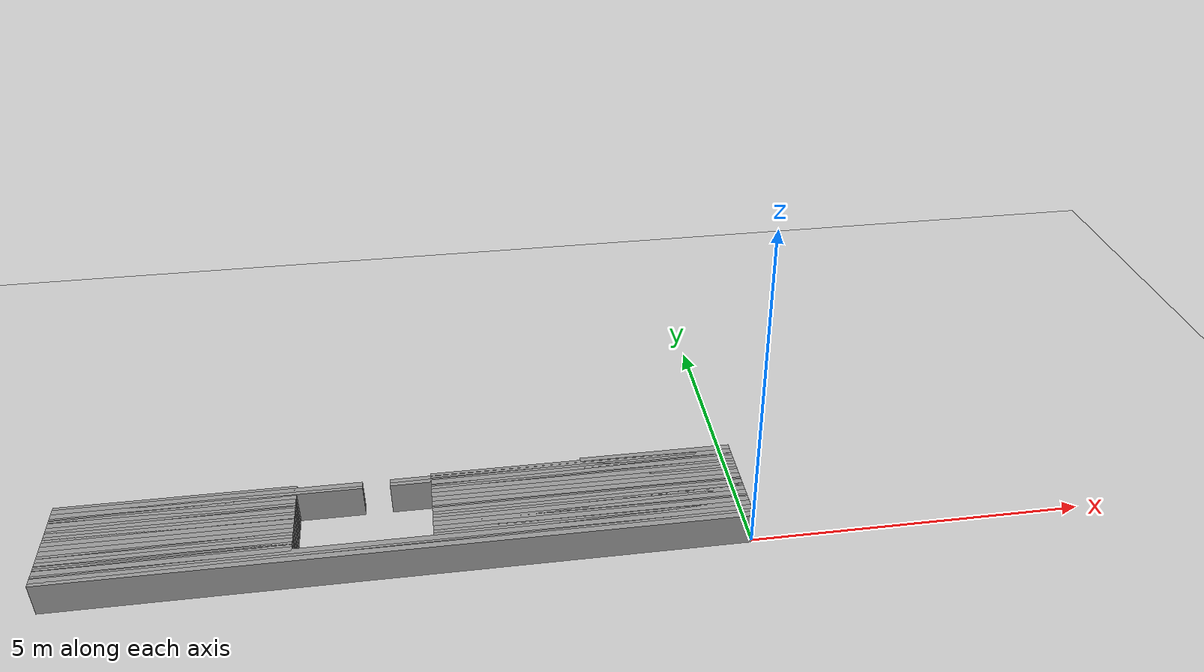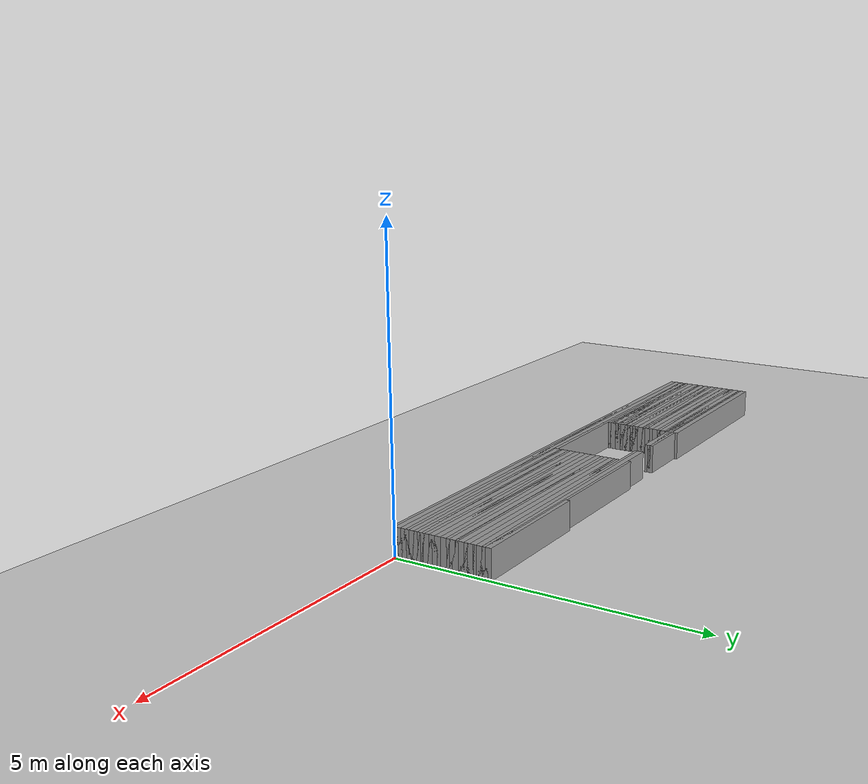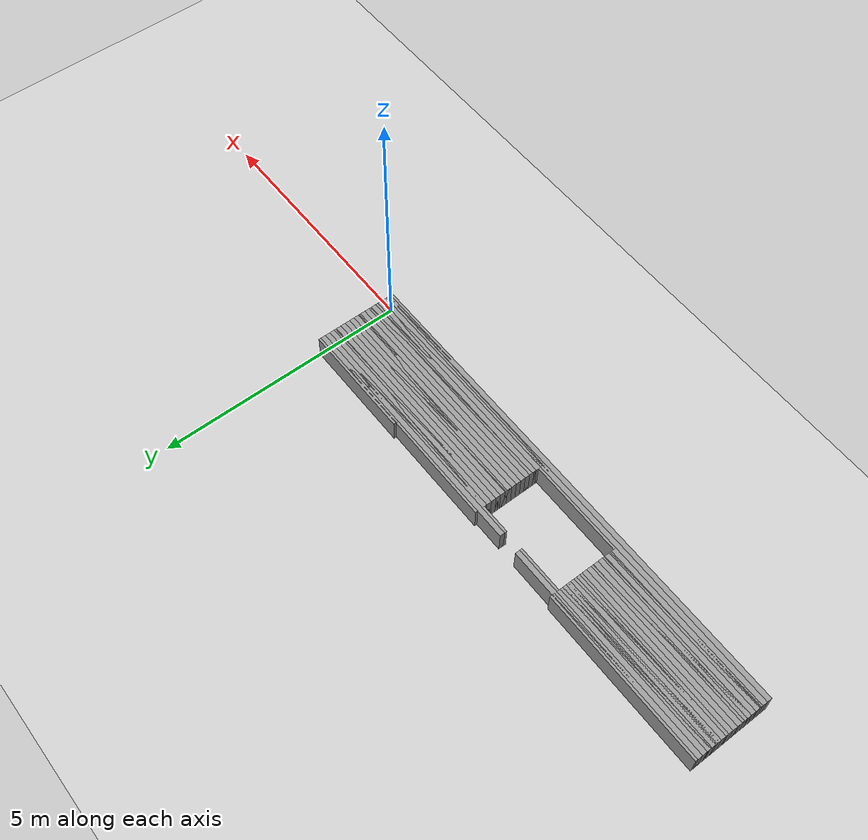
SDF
<sdf version="1.6">
 <world name="GridMap">
  <include><uri>model://sun</uri></include>
  <include><uri>model://ground_plane</uri></include>
  <model name="GridMap">
   <link name="Wall_(99.5,0.0)">
    <collision name="Wall_(99.5,0.0)_Collision">
     <geometry><box><size>9.950000000000001 0.1 0.5</size></box></geometry>
     <pose>-4.9750000000000005 0.0 0.25 0 -0 0</pose>
    </collision>
    <inertial>
     <mass>0.5</mass>
     <pose>0 0.01 0 0 0 0</pose>
     <inertia><ixx>0.004</ixx><ixy>0.001</ixy><ixz>0</ixz><iyy>0.006</iyy><iyz>0</iyz><izz>0.007</izz></inertia>
    </inertial>
    <visual name="Wall_(99.5,0.0)_Visual">
     <geometry><box><size>9.950000000000001 0.1 0.5</size></box></geometry>
     <pose>-4.9750000000000005 0.0 0.25 0 -0 0</pose>
     <material>
      <script><uri>file://media/materials/scripts/gazebo.material</uri><name>Gazebo/Grey</name></script>
      <ambient>1 1 1 1</ambient>
     </material>
     <meta><layer>0</layer></meta>
    </visual>
   </link>
   <link name="Wall_(99.5,1.0)">
    <collision name="Wall_(99.5,1.0)_Collision">
     <geometry><box><size>9.950000000000001 0.1 0.5</size></box></geometry>
     <pose>-4.9750000000000005 0.05 0.25 0 -0 0</pose>
    </collision>
    <inertial>
     <mass>0.5</mass>
     <pose>0 0.01 0 0 0 0</pose>
     <inertia><ixx>0.004</ixx><ixy>0.001</ixy><ixz>0</ixz><iyy>0.006</iyy><iyz>0</iyz><izz>0.007</izz></inertia>
    </inertial>
    <visual name="Wall_(99.5,1.0)_Visual">
     <geometry><box><size>9.950000000000001 0.1 0.5</size></box></geometry>
     <pose>-4.9750000000000005 0.05 0.25 0 -0 0</pose>
     <material>
      <script><uri>file://media/materials/scripts/gazebo.material</uri><name>Gazebo/Grey</name></script>
      <ambient>1 1 1 1</ambient>
     </material>
     <meta><layer>0</layer></meta>
    </visual>
   </link>
   <link name="Wall_(99.5,2.0)">
    <collision name="Wall_(99.5,2.0)_Collision">
     <geometry><box><size>9.950000000000001 0.1 0.5</size></box></geometry>
     <pose>-4.9750000000000005 0.1 0.25 0 -0 0</pose>
    </collision>
    <inertial>
     <mass>0.5</mass>
     <pose>0 0.01 0 0 0 0</pose>
     <inertia><ixx>0.004</ixx><ixy>0.001</ixy><ixz>0</ixz><iyy>0.006</iyy><iyz>0</iyz><izz>0.007</izz></inertia>
    </inertial>
    <visual name="Wall_(99.5,2.0)_Visual">
     <geometry><box><size>9.950000000000001 0.1 0.5</size></box></geometry>
     <pose>-4.9750000000000005 0.1 0.25 0 -0 0</pose>
     <material>
      <script><uri>file://media/materials/scripts/gazebo.material</uri><name>Gazebo/Grey</name></script>
      <ambient>1 1 1 1</ambient>
     </material>
     <meta><layer>0</layer></meta>
    </visual>
   </link>
   <link name="Wall_(99.5,3.0)">
    <collision name="Wall_(99.5,3.0)_Collision">
     <geometry><box><size>9.950000000000001 0.1 0.5</size></box></geometry>
     <pose>-4.9750000000000005 0.15000000000000002 0.25 0 -0 0</pose>
    </collision>
    <inertial>
     <mass>0.5</mass>
     <pose>0 0.01 0 0 0 0</pose>
     <inertia><ixx>0.004</ixx><ixy>0.001</ixy><ixz>0</ixz><iyy>0.006</iyy><iyz>0</iyz><izz>0.007</izz></inertia>
    </inertial>
    <visual name="Wall_(99.5,3.0)_Visual">
     <geometry><box><size>9.950000000000001 0.1 0.5</size></box></geometry>
     <pose>-4.9750000000000005 0.15000000000000002 0.25 0 -0 0</pose>
     <material>
      <script><uri>file://media/materials/scripts/gazebo.material</uri><name>Gazebo/Grey</name></script>
      <ambient>1 1 1 1</ambient>
     </material>
     <meta><layer>0</layer></meta>
    </visual>
   </link>
   <link name="Wall_(45.5,4.0)">
    <collision name="Wall_(45.5,4.0)_Collision">
     <geometry><box><size>4.55 0.1 0.5</size></box></geometry>
     <pose>-2.275 0.2 0.25 0 -0 0</pose>
    </collision>
    <inertial>
     <mass>0.5</mass>
     <pose>0 0.01 0 0 0 0</pose>
     <inertia><ixx>0.004</ixx><ixy>0.001</ixy><ixz>0</ixz><iyy>0.006</iyy><iyz>0</iyz><izz>0.007</izz></inertia>
    </inertial>
    <visual name="Wall_(45.5,4.0)_Visual">
     <geometry><box><size>4.55 0.1 0.5</size></box></geometry>
     <pose>-2.275 0.2 0.25 0 -0 0</pose>
     <material>
      <script><uri>file://media/materials/scripts/gazebo.material</uri><name>Gazebo/Grey</name></script>
      <ambient>1 1 1 1</ambient>
     </material>
     <meta><layer>0</layer></meta>
    </visual>
   </link>
   <link name="Wall_(164.5,4.0)">
    <collision name="Wall_(164.5,4.0)_Collision">
     <geometry><box><size>3.45 0.1 0.5</size></box></geometry>
     <pose>-8.225 0.2 0.25 0 -0 0</pose>
    </collision>
    <inertial>
     <mass>0.5</mass>
     <pose>0 0.01 0 0 0 0</pose>
     <inertia><ixx>0.004</ixx><ixy>0.001</ixy><ixz>0</ixz><iyy>0.006</iyy><iyz>0</iyz><izz>0.007</izz></inertia>
    </inertial>
    <visual name="Wall_(164.5,4.0)_Visual">
     <geometry><box><size>3.45 0.1 0.5</size></box></geometry>
     <pose>-8.225 0.2 0.25 0 -0 0</pose>
     <material>
      <script><uri>file://media/materials/scripts/gazebo.material</uri><name>Gazebo/Grey</name></script>
      <ambient>1 1 1 1</ambient>
     </material>
     <meta><layer>0</layer></meta>
    </visual>
   </link>
   <link name="Wall_(45.5,5.0)">
    <collision name="Wall_(45.5,5.0)_Collision">
     <geometry><box><size>4.55 0.1 0.5</size></box></geometry>
     <pose>-2.275 0.25 0.25 0 -0 0</pose>
    </collision>
    <inertial>
     <mass>0.5</mass>
     <pose>0 0.01 0 0 0 0</pose>
     <inertia><ixx>0.004</ixx><ixy>0.001</ixy><ixz>0</ixz><iyy>0.006</iyy><iyz>0</iyz><izz>0.007</izz></inertia>
    </inertial>
    <visual name="Wall_(45.5,5.0)_Visual">
     <geometry><box><size>4.55 0.1 0.5</size></box></geometry>
     <pose>-2.275 0.25 0.25 0 -0 0</pose>
     <material>
      <script><uri>file://media/materials/scripts/gazebo.material</uri><name>Gazebo/Grey</name></script>
      <ambient>1 1 1 1</ambient>
     </material>
     <meta><layer>0</layer></meta>
    </visual>
   </link>
   <link name="Wall_(164.5,5.0)">
    <collision name="Wall_(164.5,5.0)_Collision">
     <geometry><box><size>3.45 0.1 0.5</size></box></geometry>
     <pose>-8.225 0.25 0.25 0 -0 0</pose>
    </collision>
    <inertial>
     <mass>0.5</mass>
     <pose>0 0.01 0 0 0 0</pose>
     <inertia><ixx>0.004</ixx><ixy>0.001</ixy><ixz>0</ixz><iyy>0.006</iyy><iyz>0</iyz><izz>0.007</izz></inertia>
    </inertial>
    <visual name="Wall_(164.5,5.0)_Visual">
     <geometry><box><size>3.45 0.1 0.5</size></box></geometry>
     <pose>-8.225 0.25 0.25 0 -0 0</pose>
     <material>
      <script><uri>file://media/materials/scripts/gazebo.material</uri><name>Gazebo/Grey</name></script>
      <ambient>1 1 1 1</ambient>
     </material>
     <meta><layer>0</layer></meta>
    </visual>
   </link>
   <link name="Wall_(45.5,6.0)">
    <collision name="Wall_(45.5,6.0)_Collision">
     <geometry><box><size>4.55 0.1 0.5</size></box></geometry>
     <pose>-2.275 0.30000000000000004 0.25 0 -0 0</pose>
    </collision>
    <inertial>
     <mass>0.5</mass>
     <pose>0 0.01 0 0 0 0</pose>
     <inertia><ixx>0.004</ixx><ixy>0.001</ixy><ixz>0</ixz><iyy>0.006</iyy><iyz>0</iyz><izz>0.007</izz></inertia>
    </inertial>
    <visual name="Wall_(45.5,6.0)_Visual">
     <geometry><box><size>4.55 0.1 0.5</size></box></geometry>
     <pose>-2.275 0.30000000000000004 0.25 0 -0 0</pose>
     <material>
      <script><uri>file://media/materials/scripts/gazebo.material</uri><name>Gazebo/Grey</name></script>
      <ambient>1 1 1 1</ambient>
     </material>
     <meta><layer>0</layer></meta>
    </visual>
   </link>
   <link name="Wall_(164.5,6.0)">
    <collision name="Wall_(164.5,6.0)_Collision">
     <geometry><box><size>3.45 0.1 0.5</size></box></geometry>
     <pose>-8.225 0.30000000000000004 0.25 0 -0 0</pose>
    </collision>
    <inertial>
     <mass>0.5</mass>
     <pose>0 0.01 0 0 0 0</pose>
     <inertia><ixx>0.004</ixx><ixy>0.001</ixy><ixz>0</ixz><iyy>0.006</iyy><iyz>0</iyz><izz>0.007</izz></inertia>
    </inertial>
    <visual name="Wall_(164.5,6.0)_Visual">
     <geometry><box><size>3.45 0.1 0.5</size></box></geometry>
     <pose>-8.225 0.30000000000000004 0.25 0 -0 0</pose>
     <material>
      <script><uri>file://media/materials/scripts/gazebo.material</uri><name>Gazebo/Grey</name></script>
      <ambient>1 1 1 1</ambient>
     </material>
     <meta><layer>0</layer></meta>
    </visual>
   </link>
   <link name="Wall_(45.5,7.0)">
    <collision name="Wall_(45.5,7.0)_Collision">
     <geometry><box><size>4.55 0.1 0.5</size></box></geometry>
     <pose>-2.275 0.35000000000000003 0.25 0 -0 0</pose>
    </collision>
    <inertial>
     <mass>0.5</mass>
     <pose>0 0.01 0 0 0 0</pose>
     <inertia><ixx>0.004</ixx><ixy>0.001</ixy><ixz>0</ixz><iyy>0.006</iyy><iyz>0</iyz><izz>0.007</izz></inertia>
    </inertial>
    <visual name="Wall_(45.5,7.0)_Visual">
     <geometry><box><size>4.55 0.1 0.5</size></box></geometry>
     <pose>-2.275 0.35000000000000003 0.25 0 -0 0</pose>
     <material>
      <script><uri>file://media/materials/scripts/gazebo.material</uri><name>Gazebo/Grey</name></script>
      <ambient>1 1 1 1</ambient>
     </material>
     <meta><layer>0</layer></meta>
    </visual>
   </link>
   <link name="Wall_(164.5,7.0)">
    <collision name="Wall_(164.5,7.0)_Collision">
     <geometry><box><size>3.45 0.1 0.5</size></box></geometry>
     <pose>-8.225 0.35000000000000003 0.25 0 -0 0</pose>
    </collision>
    <inertial>
     <mass>0.5</mass>
     <pose>0 0.01 0 0 0 0</pose>
     <inertia><ixx>0.004</ixx><ixy>0.001</ixy><ixz>0</ixz><iyy>0.006</iyy><iyz>0</iyz><izz>0.007</izz></inertia>
    </inertial>
    <visual name="Wall_(164.5,7.0)_Visual">
     <geometry><box><size>3.45 0.1 0.5</size></box></geometry>
     <pose>-8.225 0.35000000000000003 0.25 0 -0 0</pose>
     <material>
      <script><uri>file://media/materials/scripts/gazebo.material</uri><name>Gazebo/Grey</name></script>
      <ambient>1 1 1 1</ambient>
     </material>
     <meta><layer>0</layer></meta>
    </visual>
   </link>
   <link name="Wall_(45.5,8.0)">
    <collision name="Wall_(45.5,8.0)_Collision">
     <geometry><box><size>4.55 0.1 0.5</size></box></geometry>
     <pose>-2.275 0.4 0.25 0 -0 0</pose>
    </collision>
    <inertial>
     <mass>0.5</mass>
     <pose>0 0.01 0 0 0 0</pose>
     <inertia><ixx>0.004</ixx><ixy>0.001</ixy><ixz>0</ixz><iyy>0.006</iyy><iyz>0</iyz><izz>0.007</izz></inertia>
    </inertial>
    <visual name="Wall_(45.5,8.0)_Visual">
     <geometry><box><size>4.55 0.1 0.5</size></box></geometry>
     <pose>-2.275 0.4 0.25 0 -0 0</pose>
     <material>
      <script><uri>file://media/materials/scripts/gazebo.material</uri><name>Gazebo/Grey</name></script>
      <ambient>1 1 1 1</ambient>
     </material>
     <meta><layer>0</layer></meta>
    </visual>
   </link>
   <link name="Wall_(164.5,8.0)">
    <collision name="Wall_(164.5,8.0)_Collision">
     <geometry><box><size>3.45 0.1 0.5</size></box></geometry>
     <pose>-8.225 0.4 0.25 0 -0 0</pose>
    </collision>
    <inertial>
     <mass>0.5</mass>
     <pose>0 0.01 0 0 0 0</pose>
     <inertia><ixx>0.004</ixx><ixy>0.001</ixy><ixz>0</ixz><iyy>0.006</iyy><iyz>0</iyz><izz>0.007</izz></inertia>
    </inertial>
    <visual name="Wall_(164.5,8.0)_Visual">
     <geometry><box><size>3.45 0.1 0.5</size></box></geometry>
     <pose>-8.225 0.4 0.25 0 -0 0</pose>
     <material>
      <script><uri>file://media/materials/scripts/gazebo.material</uri><name>Gazebo/Grey</name></script>
      <ambient>1 1 1 1</ambient>
     </material>
     <meta><layer>0</layer></meta>
    </visual>
   </link>
   <link name="Wall_(45.5,9.0)">
    <collision name="Wall_(45.5,9.0)_Collision">
     <geometry><box><size>4.55 0.1 0.5</size></box></geometry>
     <pose>-2.275 0.45 0.25 0 -0 0</pose>
    </collision>
    <inertial>
     <mass>0.5</mass>
     <pose>0 0.01 0 0 0 0</pose>
     <inertia><ixx>0.004</ixx><ixy>0.001</ixy><ixz>0</ixz><iyy>0.006</iyy><iyz>0</iyz><izz>0.007</izz></inertia>
    </inertial>
    <visual name="Wall_(45.5,9.0)_Visual">
     <geometry><box><size>4.55 0.1 0.5</size></box></geometry>
     <pose>-2.275 0.45 0.25 0 -0 0</pose>
     <material>
      <script><uri>file://media/materials/scripts/gazebo.material</uri><name>Gazebo/Grey</name></script>
      <ambient>1 1 1 1</ambient>
     </material>
     <meta><layer>0</layer></meta>
    </visual>
   </link>
   <link name="Wall_(164.5,9.0)">
    <collision name="Wall_(164.5,9.0)_Collision">
     <geometry><box><size>3.45 0.1 0.5</size></box></geometry>
     <pose>-8.225 0.45 0.25 0 -0 0</pose>
    </collision>
    <inertial>
     <mass>0.5</mass>
     <pose>0 0.01 0 0 0 0</pose>
     <inertia><ixx>0.004</ixx><ixy>0.001</ixy><ixz>0</ixz><iyy>0.006</iyy><iyz>0</iyz><izz>0.007</izz></inertia>
    </inertial>
    <visual name="Wall_(164.5,9.0)_Visual">
     <geometry><box><size>3.45 0.1 0.5</size></box></geometry>
     <pose>-8.225 0.45 0.25 0 -0 0</pose>
     <material>
      <script><uri>file://media/materials/scripts/gazebo.material</uri><name>Gazebo/Grey</name></script>
      <ambient>1 1 1 1</ambient>
     </material>
     <meta><layer>0</layer></meta>
    </visual>
   </link>
   <link name="Wall_(45.5,10.0)">
    <collision name="Wall_(45.5,10.0)_Collision">
     <geometry><box><size>4.55 0.1 0.5</size></box></geometry>
     <pose>-2.275 0.5 0.25 0 -0 0</pose>
    </collision>
    <inertial>
     <mass>0.5</mass>
     <pose>0 0.01 0 0 0 0</pose>
     <inertia><ixx>0.004</ixx><ixy>0.001</ixy><ixz>0</ixz><iyy>0.006</iyy><iyz>0</iyz><izz>0.007</izz></inertia>
    </inertial>
    <visual name="Wall_(45.5,10.0)_Visual">
     <geometry><box><size>4.55 0.1 0.5</size></box></geometry>
     <pose>-2.275 0.5 0.25 0 -0 0</pose>
     <material>
      <script><uri>file://media/materials/scripts/gazebo.material</uri><name>Gazebo/Grey</name></script>
      <ambient>1 1 1 1</ambient>
     </material>
     <meta><layer>0</layer></meta>
    </visual>
   </link>
   <link name="Wall_(164.5,10.0)">
    <collision name="Wall_(164.5,10.0)_Collision">
     <geometry><box><size>3.45 0.1 0.5</size></box></geometry>
     <pose>-8.225 0.5 0.25 0 -0 0</pose>
    </collision>
    <inertial>
     <mass>0.5</mass>
     <pose>0 0.01 0 0 0 0</pose>
     <inertia><ixx>0.004</ixx><ixy>0.001</ixy><ixz>0</ixz><iyy>0.006</iyy><iyz>0</iyz><izz>0.007</izz></inertia>
    </inertial>
    <visual name="Wall_(164.5,10.0)_Visual">
     <geometry><box><size>3.45 0.1 0.5</size></box></geometry>
     <pose>-8.225 0.5 0.25 0 -0 0</pose>
     <material>
      <script><uri>file://media/materials/scripts/gazebo.material</uri><name>Gazebo/Grey</name></script>
      <ambient>1 1 1 1</ambient>
     </material>
     <meta><layer>0</layer></meta>
    </visual>
   </link>
   <link name="Wall_(45.5,11.0)">
    <collision name="Wall_(45.5,11.0)_Collision">
     <geometry><box><size>4.55 0.1 0.5</size></box></geometry>
     <pose>-2.275 0.55 0.25 0 -0 0</pose>
    </collision>
    <inertial>
     <mass>0.5</mass>
     <pose>0 0.01 0 0 0 0</pose>
     <inertia><ixx>0.004</ixx><ixy>0.001</ixy><ixz>0</ixz><iyy>0.006</iyy><iyz>0</iyz><izz>0.007</izz></inertia>
    </inertial>
    <visual name="Wall_(45.5,11.0)_Visual">
     <geometry><box><size>4.55 0.1 0.5</size></box></geometry>
     <pose>-2.275 0.55 0.25 0 -0 0</pose>
     <material>
      <script><uri>file://media/materials/scripts/gazebo.material</uri><name>Gazebo/Grey</name></script>
      <ambient>1 1 1 1</ambient>
     </material>
     <meta><layer>0</layer></meta>
    </visual>
   </link>
   <link name="Wall_(164.5,11.0)">
    <collision name="Wall_(164.5,11.0)_Collision">
     <geometry><box><size>3.45 0.1 0.5</size></box></geometry>
     <pose>-8.225 0.55 0.25 0 -0 0</pose>
    </collision>
    <inertial>
     <mass>0.5</mass>
     <pose>0 0.01 0 0 0 0</pose>
     <inertia><ixx>0.004</ixx><ixy>0.001</ixy><ixz>0</ixz><iyy>0.006</iyy><iyz>0</iyz><izz>0.007</izz></inertia>
    </inertial>
    <visual name="Wall_(164.5,11.0)_Visual">
     <geometry><box><size>3.45 0.1 0.5</size></box></geometry>
     <pose>-8.225 0.55 0.25 0 -0 0</pose>
     <material>
      <script><uri>file://media/materials/scripts/gazebo.material</uri><name>Gazebo/Grey</name></script>
      <ambient>1 1 1 1</ambient>
     </material>
     <meta><layer>0</layer></meta>
    </visual>
   </link>
   <link name="Wall_(45.5,12.0)">
    <collision name="Wall_(45.5,12.0)_Collision">
     <geometry><box><size>4.55 0.1 0.5</size></box></geometry>
     <pose>-2.275 0.6000000000000001 0.25 0 -0 0</pose>
    </collision>
    <inertial>
     <mass>0.5</mass>
     <pose>0 0.01 0 0 0 0</pose>
     <inertia><ixx>0.004</ixx><ixy>0.001</ixy><ixz>0</ixz><iyy>0.006</iyy><iyz>0</iyz><izz>0.007</izz></inertia>
    </inertial>
    <visual name="Wall_(45.5,12.0)_Visual">
     <geometry><box><size>4.55 0.1 0.5</size></box></geometry>
     <pose>-2.275 0.6000000000000001 0.25 0 -0 0</pose>
     <material>
      <script><uri>file://media/materials/scripts/gazebo.material</uri><name>Gazebo/Grey</name></script>
      <ambient>1 1 1 1</ambient>
     </material>
     <meta><layer>0</layer></meta>
    </visual>
   </link>
   <link name="Wall_(164.5,12.0)">
    <collision name="Wall_(164.5,12.0)_Collision">
     <geometry><box><size>3.45 0.1 0.5</size></box></geometry>
     <pose>-8.225 0.6000000000000001 0.25 0 -0 0</pose>
    </collision>
    <inertial>
     <mass>0.5</mass>
     <pose>0 0.01 0 0 0 0</pose>
     <inertia><ixx>0.004</ixx><ixy>0.001</ixy><ixz>0</ixz><iyy>0.006</iyy><iyz>0</iyz><izz>0.007</izz></inertia>
    </inertial>
    <visual name="Wall_(164.5,12.0)_Visual">
     <geometry><box><size>3.45 0.1 0.5</size></box></geometry>
     <pose>-8.225 0.6000000000000001 0.25 0 -0 0</pose>
     <material>
      <script><uri>file://media/materials/scripts/gazebo.material</uri><name>Gazebo/Grey</name></script>
      <ambient>1 1 1 1</ambient>
     </material>
     <meta><layer>0</layer></meta>
    </visual>
   </link>
   <link name="Wall_(45.5,13.0)">
    <collision name="Wall_(45.5,13.0)_Collision">
     <geometry><box><size>4.55 0.1 0.5</size></box></geometry>
     <pose>-2.275 0.65 0.25 0 -0 0</pose>
    </collision>
    <inertial>
     <mass>0.5</mass>
     <pose>0 0.01 0 0 0 0</pose>
     <inertia><ixx>0.004</ixx><ixy>0.001</ixy><ixz>0</ixz><iyy>0.006</iyy><iyz>0</iyz><izz>0.007</izz></inertia>
    </inertial>
    <visual name="Wall_(45.5,13.0)_Visual">
     <geometry><box><size>4.55 0.1 0.5</size></box></geometry>
     <pose>-2.275 0.65 0.25 0 -0 0</pose>
     <material>
      <script><uri>file://media/materials/scripts/gazebo.material</uri><name>Gazebo/Grey</name></script>
      <ambient>1 1 1 1</ambient>
     </material>
     <meta><layer>0</layer></meta>
    </visual>
   </link>
   <link name="Wall_(164.5,13.0)">
    <collision name="Wall_(164.5,13.0)_Collision">
     <geometry><box><size>3.45 0.1 0.5</size></box></geometry>
     <pose>-8.225 0.65 0.25 0 -0 0</pose>
    </collision>
    <inertial>
     <mass>0.5</mass>
     <pose>0 0.01 0 0 0 0</pose>
     <inertia><ixx>0.004</ixx><ixy>0.001</ixy><ixz>0</ixz><iyy>0.006</iyy><iyz>0</iyz><izz>0.007</izz></inertia>
    </inertial>
    <visual name="Wall_(164.5,13.0)_Visual">
     <geometry><box><size>3.45 0.1 0.5</size></box></geometry>
     <pose>-8.225 0.65 0.25 0 -0 0</pose>
     <material>
      <script><uri>file://media/materials/scripts/gazebo.material</uri><name>Gazebo/Grey</name></script>
      <ambient>1 1 1 1</ambient>
     </material>
     <meta><layer>0</layer></meta>
    </visual>
   </link>
   <link name="Wall_(45.5,14.0)">
    <collision name="Wall_(45.5,14.0)_Collision">
     <geometry><box><size>4.55 0.1 0.5</size></box></geometry>
     <pose>-2.275 0.7000000000000001 0.25 0 -0 0</pose>
    </collision>
    <inertial>
     <mass>0.5</mass>
     <pose>0 0.01 0 0 0 0</pose>
     <inertia><ixx>0.004</ixx><ixy>0.001</ixy><ixz>0</ixz><iyy>0.006</iyy><iyz>0</iyz><izz>0.007</izz></inertia>
    </inertial>
    <visual name="Wall_(45.5,14.0)_Visual">
     <geometry><box><size>4.55 0.1 0.5</size></box></geometry>
     <pose>-2.275 0.7000000000000001 0.25 0 -0 0</pose>
     <material>
      <script><uri>file://media/materials/scripts/gazebo.material</uri><name>Gazebo/Grey</name></script>
      <ambient>1 1 1 1</ambient>
     </material>
     <meta><layer>0</layer></meta>
    </visual>
   </link>
   <link name="Wall_(164.5,14.0)">
    <collision name="Wall_(164.5,14.0)_Collision">
     <geometry><box><size>3.45 0.1 0.5</size></box></geometry>
     <pose>-8.225 0.7000000000000001 0.25 0 -0 0</pose>
    </collision>
    <inertial>
     <mass>0.5</mass>
     <pose>0 0.01 0 0 0 0</pose>
     <inertia><ixx>0.004</ixx><ixy>0.001</ixy><ixz>0</ixz><iyy>0.006</iyy><iyz>0</iyz><izz>0.007</izz></inertia>
    </inertial>
    <visual name="Wall_(164.5,14.0)_Visual">
     <geometry><box><size>3.45 0.1 0.5</size></box></geometry>
     <pose>-8.225 0.7000000000000001 0.25 0 -0 0</pose>
     <material>
      <script><uri>file://media/materials/scripts/gazebo.material</uri><name>Gazebo/Grey</name></script>
      <ambient>1 1 1 1</ambient>
     </material>
     <meta><layer>0</layer></meta>
    </visual>
   </link>
   <link name="Wall_(45.5,15.0)">
    <collision name="Wall_(45.5,15.0)_Collision">
     <geometry><box><size>4.55 0.1 0.5</size></box></geometry>
     <pose>-2.275 0.75 0.25 0 -0 0</pose>
    </collision>
    <inertial>
     <mass>0.5</mass>
     <pose>0 0.01 0 0 0 0</pose>
     <inertia><ixx>0.004</ixx><ixy>0.001</ixy><ixz>0</ixz><iyy>0.006</iyy><iyz>0</iyz><izz>0.007</izz></inertia>
    </inertial>
    <visual name="Wall_(45.5,15.0)_Visual">
     <geometry><box><size>4.55 0.1 0.5</size></box></geometry>
     <pose>-2.275 0.75 0.25 0 -0 0</pose>
     <material>
      <script><uri>file://media/materials/scripts/gazebo.material</uri><name>Gazebo/Grey</name></script>
      <ambient>1 1 1 1</ambient>
     </material>
     <meta><layer>0</layer></meta>
    </visual>
   </link>
   <link name="Wall_(164.5,15.0)">
    <collision name="Wall_(164.5,15.0)_Collision">
     <geometry><box><size>3.45 0.1 0.5</size></box></geometry>
     <pose>-8.225 0.75 0.25 0 -0 0</pose>
    </collision>
    <inertial>
     <mass>0.5</mass>
     <pose>0 0.01 0 0 0 0</pose>
     <inertia><ixx>0.004</ixx><ixy>0.001</ixy><ixz>0</ixz><iyy>0.006</iyy><iyz>0</iyz><izz>0.007</izz></inertia>
    </inertial>
    <visual name="Wall_(164.5,15.0)_Visual">
     <geometry><box><size>3.45 0.1 0.5</size></box></geometry>
     <pose>-8.225 0.75 0.25 0 -0 0</pose>
     <material>
      <script><uri>file://media/materials/scripts/gazebo.material</uri><name>Gazebo/Grey</name></script>
      <ambient>1 1 1 1</ambient>
     </material>
     <meta><layer>0</layer></meta>
    </visual>
   </link>
   <link name="Wall_(45.5,16.0)">
    <collision name="Wall_(45.5,16.0)_Collision">
     <geometry><box><size>4.55 0.1 0.5</size></box></geometry>
     <pose>-2.275 0.8 0.25 0 -0 0</pose>
    </collision>
    <inertial>
     <mass>0.5</mass>
     <pose>0 0.01 0 0 0 0</pose>
     <inertia><ixx>0.004</ixx><ixy>0.001</ixy><ixz>0</ixz><iyy>0.006</iyy><iyz>0</iyz><izz>0.007</izz></inertia>
    </inertial>
    <visual name="Wall_(45.5,16.0)_Visual">
     <geometry><box><size>4.55 0.1 0.5</size></box></geometry>
     <pose>-2.275 0.8 0.25 0 -0 0</pose>
     <material>
      <script><uri>file://media/materials/scripts/gazebo.material</uri><name>Gazebo/Grey</name></script>
      <ambient>1 1 1 1</ambient>
     </material>
     <meta><layer>0</layer></meta>
    </visual>
   </link>
   <link name="Wall_(164.5,16.0)">
    <collision name="Wall_(164.5,16.0)_Collision">
     <geometry><box><size>3.45 0.1 0.5</size></box></geometry>
     <pose>-8.225 0.8 0.25 0 -0 0</pose>
    </collision>
    <inertial>
     <mass>0.5</mass>
     <pose>0 0.01 0 0 0 0</pose>
     <inertia><ixx>0.004</ixx><ixy>0.001</ixy><ixz>0</ixz><iyy>0.006</iyy><iyz>0</iyz><izz>0.007</izz></inertia>
    </inertial>
    <visual name="Wall_(164.5,16.0)_Visual">
     <geometry><box><size>3.45 0.1 0.5</size></box></geometry>
     <pose>-8.225 0.8 0.25 0 -0 0</pose>
     <material>
      <script><uri>file://media/materials/scripts/gazebo.material</uri><name>Gazebo/Grey</name></script>
      <ambient>1 1 1 1</ambient>
     </material>
     <meta><layer>0</layer></meta>
    </visual>
   </link>
   <link name="Wall_(45.5,17.0)">
    <collision name="Wall_(45.5,17.0)_Collision">
     <geometry><box><size>4.55 0.1 0.5</size></box></geometry>
     <pose>-2.275 0.8500000000000001 0.25 0 -0 0</pose>
    </collision>
    <inertial>
     <mass>0.5</mass>
     <pose>0 0.01 0 0 0 0</pose>
     <inertia><ixx>0.004</ixx><ixy>0.001</ixy><ixz>0</ixz><iyy>0.006</iyy><iyz>0</iyz><izz>0.007</izz></inertia>
    </inertial>
    <visual name="Wall_(45.5,17.0)_Visual">
     <geometry><box><size>4.55 0.1 0.5</size></box></geometry>
     <pose>-2.275 0.8500000000000001 0.25 0 -0 0</pose>
     <material>
      <script><uri>file://media/materials/scripts/gazebo.material</uri><name>Gazebo/Grey</name></script>
      <ambient>1 1 1 1</ambient>
     </material>
     <meta><layer>0</layer></meta>
    </visual>
   </link>
   <link name="Wall_(164.5,17.0)">
    <collision name="Wall_(164.5,17.0)_Collision">
     <geometry><box><size>3.45 0.1 0.5</size></box></geometry>
     <pose>-8.225 0.8500000000000001 0.25 0 -0 0</pose>
    </collision>
    <inertial>
     <mass>0.5</mass>
     <pose>0 0.01 0 0 0 0</pose>
     <inertia><ixx>0.004</ixx><ixy>0.001</ixy><ixz>0</ixz><iyy>0.006</iyy><iyz>0</iyz><izz>0.007</izz></inertia>
    </inertial>
    <visual name="Wall_(164.5,17.0)_Visual">
     <geometry><box><size>3.45 0.1 0.5</size></box></geometry>
     <pose>-8.225 0.8500000000000001 0.25 0 -0 0</pose>
     <material>
      <script><uri>file://media/materials/scripts/gazebo.material</uri><name>Gazebo/Grey</name></script>
      <ambient>1 1 1 1</ambient>
     </material>
     <meta><layer>0</layer></meta>
    </visual>
   </link>
   <link name="Wall_(45.5,18.0)">
    <collision name="Wall_(45.5,18.0)_Collision">
     <geometry><box><size>4.55 0.1 0.5</size></box></geometry>
     <pose>-2.275 0.9 0.25 0 -0 0</pose>
    </collision>
    <inertial>
     <mass>0.5</mass>
     <pose>0 0.01 0 0 0 0</pose>
     <inertia><ixx>0.004</ixx><ixy>0.001</ixy><ixz>0</ixz><iyy>0.006</iyy><iyz>0</iyz><izz>0.007</izz></inertia>
    </inertial>
    <visual name="Wall_(45.5,18.0)_Visual">
     <geometry><box><size>4.55 0.1 0.5</size></box></geometry>
     <pose>-2.275 0.9 0.25 0 -0 0</pose>
     <material>
      <script><uri>file://media/materials/scripts/gazebo.material</uri><name>Gazebo/Grey</name></script>
      <ambient>1 1 1 1</ambient>
     </material>
     <meta><layer>0</layer></meta>
    </visual>
   </link>
   <link name="Wall_(164.5,18.0)">
    <collision name="Wall_(164.5,18.0)_Collision">
     <geometry><box><size>3.45 0.1 0.5</size></box></geometry>
     <pose>-8.225 0.9 0.25 0 -0 0</pose>
    </collision>
    <inertial>
     <mass>0.5</mass>
     <pose>0 0.01 0 0 0 0</pose>
     <inertia><ixx>0.004</ixx><ixy>0.001</ixy><ixz>0</ixz><iyy>0.006</iyy><iyz>0</iyz><izz>0.007</izz></inertia>
    </inertial>
    <visual name="Wall_(164.5,18.0)_Visual">
     <geometry><box><size>3.45 0.1 0.5</size></box></geometry>
     <pose>-8.225 0.9 0.25 0 -0 0</pose>
     <material>
      <script><uri>file://media/materials/scripts/gazebo.material</uri><name>Gazebo/Grey</name></script>
      <ambient>1 1 1 1</ambient>
     </material>
     <meta><layer>0</layer></meta>
    </visual>
   </link>
   <link name="Wall_(45.5,19.0)">
    <collision name="Wall_(45.5,19.0)_Collision">
     <geometry><box><size>4.55 0.1 0.5</size></box></geometry>
     <pose>-2.275 0.9500000000000001 0.25 0 -0 0</pose>
    </collision>
    <inertial>
     <mass>0.5</mass>
     <pose>0 0.01 0 0 0 0</pose>
     <inertia><ixx>0.004</ixx><ixy>0.001</ixy><ixz>0</ixz><iyy>0.006</iyy><iyz>0</iyz><izz>0.007</izz></inertia>
    </inertial>
    <visual name="Wall_(45.5,19.0)_Visual">
     <geometry><box><size>4.55 0.1 0.5</size></box></geometry>
     <pose>-2.275 0.9500000000000001 0.25 0 -0 0</pose>
     <material>
      <script><uri>file://media/materials/scripts/gazebo.material</uri><name>Gazebo/Grey</name></script>
      <ambient>1 1 1 1</ambient>
     </material>
     <meta><layer>0</layer></meta>
    </visual>
   </link>
   <link name="Wall_(164.5,19.0)">
    <collision name="Wall_(164.5,19.0)_Collision">
     <geometry><box><size>3.45 0.1 0.5</size></box></geometry>
     <pose>-8.225 0.9500000000000001 0.25 0 -0 0</pose>
    </collision>
    <inertial>
     <mass>0.5</mass>
     <pose>0 0.01 0 0 0 0</pose>
     <inertia><ixx>0.004</ixx><ixy>0.001</ixy><ixz>0</ixz><iyy>0.006</iyy><iyz>0</iyz><izz>0.007</izz></inertia>
    </inertial>
    <visual name="Wall_(164.5,19.0)_Visual">
     <geometry><box><size>3.45 0.1 0.5</size></box></geometry>
     <pose>-8.225 0.9500000000000001 0.25 0 -0 0</pose>
     <material>
      <script><uri>file://media/materials/scripts/gazebo.material</uri><name>Gazebo/Grey</name></script>
      <ambient>1 1 1 1</ambient>
     </material>
     <meta><layer>0</layer></meta>
    </visual>
   </link>
   <link name="Wall_(45.5,20.0)">
    <collision name="Wall_(45.5,20.0)_Collision">
     <geometry><box><size>4.55 0.1 0.5</size></box></geometry>
     <pose>-2.275 1.0 0.25 0 -0 0</pose>
    </collision>
    <inertial>
     <mass>0.5</mass>
     <pose>0 0.01 0 0 0 0</pose>
     <inertia><ixx>0.004</ixx><ixy>0.001</ixy><ixz>0</ixz><iyy>0.006</iyy><iyz>0</iyz><izz>0.007</izz></inertia>
    </inertial>
    <visual name="Wall_(45.5,20.0)_Visual">
     <geometry><box><size>4.55 0.1 0.5</size></box></geometry>
     <pose>-2.275 1.0 0.25 0 -0 0</pose>
     <material>
      <script><uri>file://media/materials/scripts/gazebo.material</uri><name>Gazebo/Grey</name></script>
      <ambient>1 1 1 1</ambient>
     </material>
     <meta><layer>0</layer></meta>
    </visual>
   </link>
   <link name="Wall_(164.5,20.0)">
    <collision name="Wall_(164.5,20.0)_Collision">
     <geometry><box><size>3.45 0.1 0.5</size></box></geometry>
     <pose>-8.225 1.0 0.25 0 -0 0</pose>
    </collision>
    <inertial>
     <mass>0.5</mass>
     <pose>0 0.01 0 0 0 0</pose>
     <inertia><ixx>0.004</ixx><ixy>0.001</ixy><ixz>0</ixz><iyy>0.006</iyy><iyz>0</iyz><izz>0.007</izz></inertia>
    </inertial>
    <visual name="Wall_(164.5,20.0)_Visual">
     <geometry><box><size>3.45 0.1 0.5</size></box></geometry>
     <pose>-8.225 1.0 0.25 0 -0 0</pose>
     <material>
      <script><uri>file://media/materials/scripts/gazebo.material</uri><name>Gazebo/Grey</name></script>
      <ambient>1 1 1 1</ambient>
     </material>
     <meta><layer>0</layer></meta>
    </visual>
   </link>
   <link name="Wall_(45.5,21.0)">
    <collision name="Wall_(45.5,21.0)_Collision">
     <geometry><box><size>4.55 0.1 0.5</size></box></geometry>
     <pose>-2.275 1.05 0.25 0 -0 0</pose>
    </collision>
    <inertial>
     <mass>0.5</mass>
     <pose>0 0.01 0 0 0 0</pose>
     <inertia><ixx>0.004</ixx><ixy>0.001</ixy><ixz>0</ixz><iyy>0.006</iyy><iyz>0</iyz><izz>0.007</izz></inertia>
    </inertial>
    <visual name="Wall_(45.5,21.0)_Visual">
     <geometry><box><size>4.55 0.1 0.5</size></box></geometry>
     <pose>-2.275 1.05 0.25 0 -0 0</pose>
     <material>
      <script><uri>file://media/materials/scripts/gazebo.material</uri><name>Gazebo/Grey</name></script>
      <ambient>1 1 1 1</ambient>
     </material>
     <meta><layer>0</layer></meta>
    </visual>
   </link>
   <link name="Wall_(164.5,21.0)">
    <collision name="Wall_(164.5,21.0)_Collision">
     <geometry><box><size>3.45 0.1 0.5</size></box></geometry>
     <pose>-8.225 1.05 0.25 0 -0 0</pose>
    </collision>
    <inertial>
     <mass>0.5</mass>
     <pose>0 0.01 0 0 0 0</pose>
     <inertia><ixx>0.004</ixx><ixy>0.001</ixy><ixz>0</ixz><iyy>0.006</iyy><iyz>0</iyz><izz>0.007</izz></inertia>
    </inertial>
    <visual name="Wall_(164.5,21.0)_Visual">
     <geometry><box><size>3.45 0.1 0.5</size></box></geometry>
     <pose>-8.225 1.05 0.25 0 -0 0</pose>
     <material>
      <script><uri>file://media/materials/scripts/gazebo.material</uri><name>Gazebo/Grey</name></script>
      <ambient>1 1 1 1</ambient>
     </material>
     <meta><layer>0</layer></meta>
    </visual>
   </link>
   <link name="Wall_(45.5,22.0)">
    <collision name="Wall_(45.5,22.0)_Collision">
     <geometry><box><size>4.55 0.1 0.5</size></box></geometry>
     <pose>-2.275 1.1 0.25 0 -0 0</pose>
    </collision>
    <inertial>
     <mass>0.5</mass>
     <pose>0 0.01 0 0 0 0</pose>
     <inertia><ixx>0.004</ixx><ixy>0.001</ixy><ixz>0</ixz><iyy>0.006</iyy><iyz>0</iyz><izz>0.007</izz></inertia>
    </inertial>
    <visual name="Wall_(45.5,22.0)_Visual">
     <geometry><box><size>4.55 0.1 0.5</size></box></geometry>
     <pose>-2.275 1.1 0.25 0 -0 0</pose>
     <material>
      <script><uri>file://media/materials/scripts/gazebo.material</uri><name>Gazebo/Grey</name></script>
      <ambient>1 1 1 1</ambient>
     </material>
     <meta><layer>0</layer></meta>
    </visual>
   </link>
   <link name="Wall_(164.5,22.0)">
    <collision name="Wall_(164.5,22.0)_Collision">
     <geometry><box><size>3.45 0.1 0.5</size></box></geometry>
     <pose>-8.225 1.1 0.25 0 -0 0</pose>
    </collision>
    <inertial>
     <mass>0.5</mass>
     <pose>0 0.01 0 0 0 0</pose>
     <inertia><ixx>0.004</ixx><ixy>0.001</ixy><ixz>0</ixz><iyy>0.006</iyy><iyz>0</iyz><izz>0.007</izz></inertia>
    </inertial>
    <visual name="Wall_(164.5,22.0)_Visual">
     <geometry><box><size>3.45 0.1 0.5</size></box></geometry>
     <pose>-8.225 1.1 0.25 0 -0 0</pose>
     <material>
      <script><uri>file://media/materials/scripts/gazebo.material</uri><name>Gazebo/Grey</name></script>
      <ambient>1 1 1 1</ambient>
     </material>
     <meta><layer>0</layer></meta>
    </visual>
   </link>
   <link name="Wall_(45.5,23.0)">
    <collision name="Wall_(45.5,23.0)_Collision">
     <geometry><box><size>4.55 0.1 0.5</size></box></geometry>
     <pose>-2.275 1.1500000000000001 0.25 0 -0 0</pose>
    </collision>
    <inertial>
     <mass>0.5</mass>
     <pose>0 0.01 0 0 0 0</pose>
     <inertia><ixx>0.004</ixx><ixy>0.001</ixy><ixz>0</ixz><iyy>0.006</iyy><iyz>0</iyz><izz>0.007</izz></inertia>
    </inertial>
    <visual name="Wall_(45.5,23.0)_Visual">
     <geometry><box><size>4.55 0.1 0.5</size></box></geometry>
     <pose>-2.275 1.1500000000000001 0.25 0 -0 0</pose>
     <material>
      <script><uri>file://media/materials/scripts/gazebo.material</uri><name>Gazebo/Grey</name></script>
      <ambient>1 1 1 1</ambient>
     </material>
     <meta><layer>0</layer></meta>
    </visual>
   </link>
   <link name="Wall_(164.5,23.0)">
    <collision name="Wall_(164.5,23.0)_Collision">
     <geometry><box><size>3.45 0.1 0.5</size></box></geometry>
     <pose>-8.225 1.1500000000000001 0.25 0 -0 0</pose>
    </collision>
    <inertial>
     <mass>0.5</mass>
     <pose>0 0.01 0 0 0 0</pose>
     <inertia><ixx>0.004</ixx><ixy>0.001</ixy><ixz>0</ixz><iyy>0.006</iyy><iyz>0</iyz><izz>0.007</izz></inertia>
    </inertial>
    <visual name="Wall_(164.5,23.0)_Visual">
     <geometry><box><size>3.45 0.1 0.5</size></box></geometry>
     <pose>-8.225 1.1500000000000001 0.25 0 -0 0</pose>
     <material>
      <script><uri>file://media/materials/scripts/gazebo.material</uri><name>Gazebo/Grey</name></script>
      <ambient>1 1 1 1</ambient>
     </material>
     <meta><layer>0</layer></meta>
    </visual>
   </link>
   <link name="Wall_(45.5,24.0)">
    <collision name="Wall_(45.5,24.0)_Collision">
     <geometry><box><size>4.55 0.1 0.5</size></box></geometry>
     <pose>-2.275 1.2000000000000002 0.25 0 -0 0</pose>
    </collision>
    <inertial>
     <mass>0.5</mass>
     <pose>0 0.01 0 0 0 0</pose>
     <inertia><ixx>0.004</ixx><ixy>0.001</ixy><ixz>0</ixz><iyy>0.006</iyy><iyz>0</iyz><izz>0.007</izz></inertia>
    </inertial>
    <visual name="Wall_(45.5,24.0)_Visual">
     <geometry><box><size>4.55 0.1 0.5</size></box></geometry>
     <pose>-2.275 1.2000000000000002 0.25 0 -0 0</pose>
     <material>
      <script><uri>file://media/materials/scripts/gazebo.material</uri><name>Gazebo/Grey</name></script>
      <ambient>1 1 1 1</ambient>
     </material>
     <meta><layer>0</layer></meta>
    </visual>
   </link>
   <link name="Wall_(164.5,24.0)">
    <collision name="Wall_(164.5,24.0)_Collision">
     <geometry><box><size>3.45 0.1 0.5</size></box></geometry>
     <pose>-8.225 1.2000000000000002 0.25 0 -0 0</pose>
    </collision>
    <inertial>
     <mass>0.5</mass>
     <pose>0 0.01 0 0 0 0</pose>
     <inertia><ixx>0.004</ixx><ixy>0.001</ixy><ixz>0</ixz><iyy>0.006</iyy><iyz>0</iyz><izz>0.007</izz></inertia>
    </inertial>
    <visual name="Wall_(164.5,24.0)_Visual">
     <geometry><box><size>3.45 0.1 0.5</size></box></geometry>
     <pose>-8.225 1.2000000000000002 0.25 0 -0 0</pose>
     <material>
      <script><uri>file://media/materials/scripts/gazebo.material</uri><name>Gazebo/Grey</name></script>
      <ambient>1 1 1 1</ambient>
     </material>
     <meta><layer>0</layer></meta>
    </visual>
   </link>
   <link name="Wall_(45.5,25.0)">
    <collision name="Wall_(45.5,25.0)_Collision">
     <geometry><box><size>4.55 0.1 0.5</size></box></geometry>
     <pose>-2.275 1.25 0.25 0 -0 0</pose>
    </collision>
    <inertial>
     <mass>0.5</mass>
     <pose>0 0.01 0 0 0 0</pose>
     <inertia><ixx>0.004</ixx><ixy>0.001</ixy><ixz>0</ixz><iyy>0.006</iyy><iyz>0</iyz><izz>0.007</izz></inertia>
    </inertial>
    <visual name="Wall_(45.5,25.0)_Visual">
     <geometry><box><size>4.55 0.1 0.5</size></box></geometry>
     <pose>-2.275 1.25 0.25 0 -0 0</pose>
     <material>
      <script><uri>file://media/materials/scripts/gazebo.material</uri><name>Gazebo/Grey</name></script>
      <ambient>1 1 1 1</ambient>
     </material>
     <meta><layer>0</layer></meta>
    </visual>
   </link>
   <link name="Wall_(164.5,25.0)">
    <collision name="Wall_(164.5,25.0)_Collision">
     <geometry><box><size>3.45 0.1 0.5</size></box></geometry>
     <pose>-8.225 1.25 0.25 0 -0 0</pose>
    </collision>
    <inertial>
     <mass>0.5</mass>
     <pose>0 0.01 0 0 0 0</pose>
     <inertia><ixx>0.004</ixx><ixy>0.001</ixy><ixz>0</ixz><iyy>0.006</iyy><iyz>0</iyz><izz>0.007</izz></inertia>
    </inertial>
    <visual name="Wall_(164.5,25.0)_Visual">
     <geometry><box><size>3.45 0.1 0.5</size></box></geometry>
     <pose>-8.225 1.25 0.25 0 -0 0</pose>
     <material>
      <script><uri>file://media/materials/scripts/gazebo.material</uri><name>Gazebo/Grey</name></script>
      <ambient>1 1 1 1</ambient>
     </material>
     <meta><layer>0</layer></meta>
    </visual>
   </link>
   <link name="Wall_(45.5,26.0)">
    <collision name="Wall_(45.5,26.0)_Collision">
     <geometry><box><size>4.55 0.1 0.5</size></box></geometry>
     <pose>-2.275 1.3 0.25 0 -0 0</pose>
    </collision>
    <inertial>
     <mass>0.5</mass>
     <pose>0 0.01 0 0 0 0</pose>
     <inertia><ixx>0.004</ixx><ixy>0.001</ixy><ixz>0</ixz><iyy>0.006</iyy><iyz>0</iyz><izz>0.007</izz></inertia>
    </inertial>
    <visual name="Wall_(45.5,26.0)_Visual">
     <geometry><box><size>4.55 0.1 0.5</size></box></geometry>
     <pose>-2.275 1.3 0.25 0 -0 0</pose>
     <material>
      <script><uri>file://media/materials/scripts/gazebo.material</uri><name>Gazebo/Grey</name></script>
      <ambient>1 1 1 1</ambient>
     </material>
     <meta><layer>0</layer></meta>
    </visual>
   </link>
   <link name="Wall_(164.5,26.0)">
    <collision name="Wall_(164.5,26.0)_Collision">
     <geometry><box><size>3.45 0.1 0.5</size></box></geometry>
     <pose>-8.225 1.3 0.25 0 -0 0</pose>
    </collision>
    <inertial>
     <mass>0.5</mass>
     <pose>0 0.01 0 0 0 0</pose>
     <inertia><ixx>0.004</ixx><ixy>0.001</ixy><ixz>0</ixz><iyy>0.006</iyy><iyz>0</iyz><izz>0.007</izz></inertia>
    </inertial>
    <visual name="Wall_(164.5,26.0)_Visual">
     <geometry><box><size>3.45 0.1 0.5</size></box></geometry>
     <pose>-8.225 1.3 0.25 0 -0 0</pose>
     <material>
      <script><uri>file://media/materials/scripts/gazebo.material</uri><name>Gazebo/Grey</name></script>
      <ambient>1 1 1 1</ambient>
     </material>
     <meta><layer>0</layer></meta>
    </visual>
   </link>
   <link name="Wall_(45.5,27.0)">
    <collision name="Wall_(45.5,27.0)_Collision">
     <geometry><box><size>4.55 0.1 0.5</size></box></geometry>
     <pose>-2.275 1.35 0.25 0 -0 0</pose>
    </collision>
    <inertial>
     <mass>0.5</mass>
     <pose>0 0.01 0 0 0 0</pose>
     <inertia><ixx>0.004</ixx><ixy>0.001</ixy><ixz>0</ixz><iyy>0.006</iyy><iyz>0</iyz><izz>0.007</izz></inertia>
    </inertial>
    <visual name="Wall_(45.5,27.0)_Visual">
     <geometry><box><size>4.55 0.1 0.5</size></box></geometry>
     <pose>-2.275 1.35 0.25 0 -0 0</pose>
     <material>
      <script><uri>file://media/materials/scripts/gazebo.material</uri><name>Gazebo/Grey</name></script>
      <ambient>1 1 1 1</ambient>
     </material>
     <meta><layer>0</layer></meta>
    </visual>
   </link>
   <link name="Wall_(164.5,27.0)">
    <collision name="Wall_(164.5,27.0)_Collision">
     <geometry><box><size>3.45 0.1 0.5</size></box></geometry>
     <pose>-8.225 1.35 0.25 0 -0 0</pose>
    </collision>
    <inertial>
     <mass>0.5</mass>
     <pose>0 0.01 0 0 0 0</pose>
     <inertia><ixx>0.004</ixx><ixy>0.001</ixy><ixz>0</ixz><iyy>0.006</iyy><iyz>0</iyz><izz>0.007</izz></inertia>
    </inertial>
    <visual name="Wall_(164.5,27.0)_Visual">
     <geometry><box><size>3.45 0.1 0.5</size></box></geometry>
     <pose>-8.225 1.35 0.25 0 -0 0</pose>
     <material>
      <script><uri>file://media/materials/scripts/gazebo.material</uri><name>Gazebo/Grey</name></script>
      <ambient>1 1 1 1</ambient>
     </material>
     <meta><layer>0</layer></meta>
    </visual>
   </link>
   <link name="Wall_(45.5,28.0)">
    <collision name="Wall_(45.5,28.0)_Collision">
     <geometry><box><size>4.55 0.1 0.5</size></box></geometry>
     <pose>-2.275 1.4000000000000001 0.25 0 -0 0</pose>
    </collision>
    <inertial>
     <mass>0.5</mass>
     <pose>0 0.01 0 0 0 0</pose>
     <inertia><ixx>0.004</ixx><ixy>0.001</ixy><ixz>0</ixz><iyy>0.006</iyy><iyz>0</iyz><izz>0.007</izz></inertia>
    </inertial>
    <visual name="Wall_(45.5,28.0)_Visual">
     <geometry><box><size>4.55 0.1 0.5</size></box></geometry>
     <pose>-2.275 1.4000000000000001 0.25 0 -0 0</pose>
     <material>
      <script><uri>file://media/materials/scripts/gazebo.material</uri><name>Gazebo/Grey</name></script>
      <ambient>1 1 1 1</ambient>
     </material>
     <meta><layer>0</layer></meta>
    </visual>
   </link>
   <link name="Wall_(164.5,28.0)">
    <collision name="Wall_(164.5,28.0)_Collision">
     <geometry><box><size>3.45 0.1 0.5</size></box></geometry>
     <pose>-8.225 1.4000000000000001 0.25 0 -0 0</pose>
    </collision>
    <inertial>
     <mass>0.5</mass>
     <pose>0 0.01 0 0 0 0</pose>
     <inertia><ixx>0.004</ixx><ixy>0.001</ixy><ixz>0</ixz><iyy>0.006</iyy><iyz>0</iyz><izz>0.007</izz></inertia>
    </inertial>
    <visual name="Wall_(164.5,28.0)_Visual">
     <geometry><box><size>3.45 0.1 0.5</size></box></geometry>
     <pose>-8.225 1.4000000000000001 0.25 0 -0 0</pose>
     <material>
      <script><uri>file://media/materials/scripts/gazebo.material</uri><name>Gazebo/Grey</name></script>
      <ambient>1 1 1 1</ambient>
     </material>
     <meta><layer>0</layer></meta>
    </visual>
   </link>
   <link name="Wall_(51.5,29.0)">
    <collision name="Wall_(51.5,29.0)_Collision">
     <geometry><box><size>5.15 0.1 0.5</size></box></geometry>
     <pose>-2.575 1.4500000000000002 0.25 0 -0 0</pose>
    </collision>
    <inertial>
     <mass>0.5</mass>
     <pose>0 0.01 0 0 0 0</pose>
     <inertia><ixx>0.004</ixx><ixy>0.001</ixy><ixz>0</ixz><iyy>0.006</iyy><iyz>0</iyz><izz>0.007</izz></inertia>
    </inertial>
    <visual name="Wall_(51.5,29.0)_Visual">
     <geometry><box><size>5.15 0.1 0.5</size></box></geometry>
     <pose>-2.575 1.4500000000000002 0.25 0 -0 0</pose>
     <material>
      <script><uri>file://media/materials/scripts/gazebo.material</uri><name>Gazebo/Grey</name></script>
      <ambient>1 1 1 1</ambient>
     </material>
     <meta><layer>0</layer></meta>
    </visual>
   </link>
   <link name="Wall_(155.0,29.0)">
    <collision name="Wall_(155.0,29.0)_Collision">
     <geometry><box><size>4.4 0.1 0.5</size></box></geometry>
     <pose>-7.75 1.4500000000000002 0.25 0 -0 0</pose>
    </collision>
    <inertial>
     <mass>0.5</mass>
     <pose>0 0.01 0 0 0 0</pose>
     <inertia><ixx>0.004</ixx><ixy>0.001</ixy><ixz>0</ixz><iyy>0.006</iyy><iyz>0</iyz><izz>0.007</izz></inertia>
    </inertial>
    <visual name="Wall_(155.0,29.0)_Visual">
     <geometry><box><size>4.4 0.1 0.5</size></box></geometry>
     <pose>-7.75 1.4500000000000002 0.25 0 -0 0</pose>
     <material>
      <script><uri>file://media/materials/scripts/gazebo.material</uri><name>Gazebo/Grey</name></script>
      <ambient>1 1 1 1</ambient>
     </material>
     <meta><layer>0</layer></meta>
    </visual>
   </link>
   <link name="Wall_(51.5,30.0)">
    <collision name="Wall_(51.5,30.0)_Collision">
     <geometry><box><size>5.15 0.1 0.5</size></box></geometry>
     <pose>-2.575 1.5 0.25 0 -0 0</pose>
    </collision>
    <inertial>
     <mass>0.5</mass>
     <pose>0 0.01 0 0 0 0</pose>
     <inertia><ixx>0.004</ixx><ixy>0.001</ixy><ixz>0</ixz><iyy>0.006</iyy><iyz>0</iyz><izz>0.007</izz></inertia>
    </inertial>
    <visual name="Wall_(51.5,30.0)_Visual">
     <geometry><box><size>5.15 0.1 0.5</size></box></geometry>
     <pose>-2.575 1.5 0.25 0 -0 0</pose>
     <material>
      <script><uri>file://media/materials/scripts/gazebo.material</uri><name>Gazebo/Grey</name></script>
      <ambient>1 1 1 1</ambient>
     </material>
     <meta><layer>0</layer></meta>
    </visual>
   </link>
   <link name="Wall_(155.0,30.0)">
    <collision name="Wall_(155.0,30.0)_Collision">
     <geometry><box><size>4.4 0.1 0.5</size></box></geometry>
     <pose>-7.75 1.5 0.25 0 -0 0</pose>
    </collision>
    <inertial>
     <mass>0.5</mass>
     <pose>0 0.01 0 0 0 0</pose>
     <inertia><ixx>0.004</ixx><ixy>0.001</ixy><ixz>0</ixz><iyy>0.006</iyy><iyz>0</iyz><izz>0.007</izz></inertia>
    </inertial>
    <visual name="Wall_(155.0,30.0)_Visual">
     <geometry><box><size>4.4 0.1 0.5</size></box></geometry>
     <pose>-7.75 1.5 0.25 0 -0 0</pose>
     <material>
      <script><uri>file://media/materials/scripts/gazebo.material</uri><name>Gazebo/Grey</name></script>
      <ambient>1 1 1 1</ambient>
     </material>
     <meta><layer>0</layer></meta>
    </visual>
   </link>
   <link name="Wall_(45.5,31.0)">
    <collision name="Wall_(45.5,31.0)_Collision">
     <geometry><box><size>4.55 0.1 0.5</size></box></geometry>
     <pose>-2.275 1.55 0.25 0 -0 0</pose>
    </collision>
    <inertial>
     <mass>0.5</mass>
     <pose>0 0.01 0 0 0 0</pose>
     <inertia><ixx>0.004</ixx><ixy>0.001</ixy><ixz>0</ixz><iyy>0.006</iyy><iyz>0</iyz><izz>0.007</izz></inertia>
    </inertial>
    <visual name="Wall_(45.5,31.0)_Visual">
     <geometry><box><size>4.55 0.1 0.5</size></box></geometry>
     <pose>-2.275 1.55 0.25 0 -0 0</pose>
     <material>
      <script><uri>file://media/materials/scripts/gazebo.material</uri><name>Gazebo/Grey</name></script>
      <ambient>1 1 1 1</ambient>
     </material>
     <meta><layer>0</layer></meta>
    </visual>
   </link>
   <link name="Wall_(164.5,31.0)">
    <collision name="Wall_(164.5,31.0)_Collision">
     <geometry><box><size>3.45 0.1 0.5</size></box></geometry>
     <pose>-8.225 1.55 0.25 0 -0 0</pose>
    </collision>
    <inertial>
     <mass>0.5</mass>
     <pose>0 0.01 0 0 0 0</pose>
     <inertia><ixx>0.004</ixx><ixy>0.001</ixy><ixz>0</ixz><iyy>0.006</iyy><iyz>0</iyz><izz>0.007</izz></inertia>
    </inertial>
    <visual name="Wall_(164.5,31.0)_Visual">
     <geometry><box><size>3.45 0.1 0.5</size></box></geometry>
     <pose>-8.225 1.55 0.25 0 -0 0</pose>
     <material>
      <script><uri>file://media/materials/scripts/gazebo.material</uri><name>Gazebo/Grey</name></script>
      <ambient>1 1 1 1</ambient>
     </material>
     <meta><layer>0</layer></meta>
    </visual>
   </link>
   <link name="Wall_(23.0,32.0)">
    <collision name="Wall_(23.0,32.0)_Collision">
     <geometry><box><size>2.3000000000000003 0.1 0.5</size></box></geometry>
     <pose>-1.1500000000000001 1.6 0.25 0 -0 0</pose>
    </collision>
    <inertial>
     <mass>0.5</mass>
     <pose>0 0.01 0 0 0 0</pose>
     <inertia><ixx>0.004</ixx><ixy>0.001</ixy><ixz>0</ixz><iyy>0.006</iyy><iyz>0</iyz><izz>0.007</izz></inertia>
    </inertial>
    <visual name="Wall_(23.0,32.0)_Visual">
     <geometry><box><size>2.3000000000000003 0.1 0.5</size></box></geometry>
     <pose>-1.1500000000000001 1.6 0.25 0 -0 0</pose>
     <material>
      <script><uri>file://media/materials/scripts/gazebo.material</uri><name>Gazebo/Grey</name></script>
      <ambient>1 1 1 1</ambient>
     </material>
     <meta><layer>0</layer></meta>
    </visual>
   </link>
   <static>1</static>
  </model>
 </world>
</sdf>
